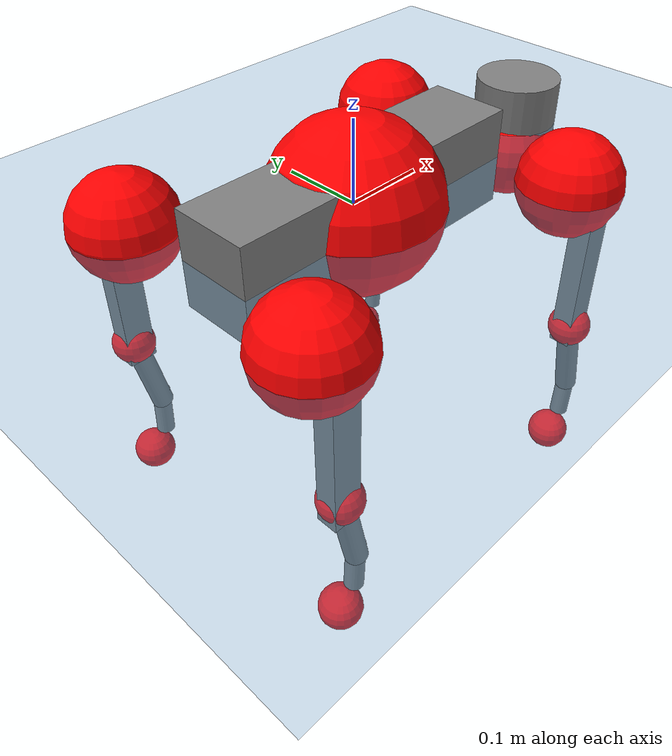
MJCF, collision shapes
<mujoco model="go2">
  <compiler angle="radian" assetdir="assets" balanceinertia="true" inertiafromgeom="false"/>

  <option timestep="0.005" density="1.2" viscosity="2e-05"/>

  <size nkey="1"/>

  <visual>
    <quality shadowsize="8192"/>
    <map shadowclip="0.5"/>
  </visual>

  <default>
    <default class="/">
      <geom contype="0" conaffinity="0" group="1" solref="-1000 -80"/>
      <site size="0.01 0.005 0.005" group="5"/>
      <general forcelimited="true" biastype="affine" gainprm="20" biasprm="0 -20 -0.5"/>
      <default class="go2">
        <joint armature="0.01" damping="0.01" frictionloss="0.2"/>
        <geom condim="1" margin="0.001"/>
        <default class="visual">
          <geom type="mesh" group="2"/>
        </default>
        <default class="collision">
          <geom group="3"/>
          <default class="foot">
            <geom size="0.022 0 0" condim="6" priority="1" friction="0.8 0.02 0.01" solimp="0.015 1 0.022"/>
          </default>
        </default>
        <default class="reward_collision_sphere">
          <geom group="5" rgba="1 0 0 1"/>
        </default>
      </default>
    </default>
  </default>

  <asset>
    <texture type="skybox" colorspace="auto" name="//unnamed_texture_0" builtin="gradient" rgb1="0.95 0.95 0.95" rgb2="0.95 0.95 0.95" width="100" height="600"/>
    <texture type="2d" colorspace="auto" name="texplane" builtin="checker" rgb1="0.345 0.575 0.748" rgb2="0.345 0.575 0.748" markrgb="1 1 1" width="512" height="512"/>
    <material name="MatPlane" class="/" texture="texplane" texuniform="true" texrepeat="2 2" specular="0.9"/>
    <material name="metal" class="/" rgba="0.9 0.95 0.95 1"/>
    <material name="black" class="/" rgba="0 0 0 1"/>
    <material name="white" class="/"/>
    <material name="gray" class="/" rgba="0.671705 0.692426 0.77427 1"/>
    <mesh name="base_0" class="/" file="base_0.obj"/>
    <mesh name="base_1" class="/" file="base_1.obj"/>
    <mesh name="base_2" class="/" file="base_2.obj"/>
    <mesh name="base_3" class="/" file="base_3.obj"/>
    <mesh name="base_4" class="/" file="base_4.obj"/>
    <mesh name="hip_0" class="/" file="hip_0.obj"/>
    <mesh name="hip_1" class="/" file="hip_1.obj"/>
    <mesh name="thigh_0" class="/" file="thigh_0.obj"/>
    <mesh name="thigh_1" class="/" file="thigh_1.obj"/>
    <mesh name="thigh_mirror_0" class="/" file="thigh_mirror_0.obj"/>
    <mesh name="thigh_mirror_1" class="/" file="thigh_mirror_1.obj"/>
    <mesh name="calf_0" class="/" file="calf_0.obj"/>
    <mesh name="calf_1" class="/" file="calf_1.obj"/>
    <mesh name="calf_mirror_0" class="/" file="calf_mirror_0.obj"/>
    <mesh name="calf_mirror_1" class="/" file="calf_mirror_1.obj"/>
    <mesh name="foot" class="/" file="foot.obj"/>
  </asset>

  <worldbody>
    <geom name="floor" class="/" size="100 100 0.125" type="plane" group="0" material="MatPlane"/>
    <light name="toplight_shadow" class="/" pos="0 0 5" dir="0.0990148 0.0990148 -0.990148" type="directional" ambient="0.04 0.04 0.04" diffuse="0.55 0.55 0.55" specular="0.12 0.12 0.12"/>
    <light name="toplight_fill" class="/" pos="0 0 5" dir="0.0990148 0.0990148 -0.990148" type="directional" castshadow="false" ambient="0.04 0.04 0.04" diffuse="0.3 0.3 0.3" specular="0.08 0.08 0.08"/>
    <body name="trunk" childclass="go2" pos="0.000244594 -0.000488302 0.000274279" quat="1 -5.4253e-05 4.27003e-05 -1.44759e-05">
      <inertial pos="0.0243135 -0.000119316 -0.00504537" quat="0.00317794 0.710236 -0.0168201 0.703755" mass="7.87977" diaginertia="0.126346 0.25977 0.0121472"/>
      <joint name="//unnamed_joint_0" type="free" armature="0" damping="0" frictionloss="0"/>
      <geom name="//unnamed_geom_1" class="visual" material="black" mesh="base_0"/>
      <geom name="//unnamed_geom_2" class="visual" material="black" mesh="base_1"/>
      <geom name="//unnamed_geom_3" class="visual" material="black" mesh="base_2"/>
      <geom name="//unnamed_geom_4" class="visual" material="white" mesh="base_3"/>
      <geom name="//unnamed_geom_5" class="visual" material="gray" mesh="base_4"/>
      <geom name="trunk_1" class="collision" size="0.196177 0.0487573 0.0594475" type="box"/>
      <geom name="trunk_2" class="collision" size="0.0521469 0.0469322" pos="0.296096 0 0.00869203" type="cylinder"/>
      <geom name="trunk_3" class="collision" size="0.0490181" pos="0.304407 0 -0.0521522"/>
      <geom name="//unnamed_geom_9" class="reward_collision_sphere" size="0.104294"/>
      <geom name="//unnamed_geom_10" class="reward_collision_sphere" size="0.0625763" pos="0.290901 0 -0.0391141"/>
      <site name="imu" pos="-0.0229781 0.0103655 0.0342872" size="0.0104294"/>
      <camera name="track" pos="0 -2.44135 0" quat="0.707107 0.707107 0 0" mode="trackcom"/>
      <camera name="ego_camera" pos="0.324147 0 0.0391141" quat="-0.5 -0.5 0.5 0.5"/>
      <body name="FL_hip" pos="0.202152 0.0537886 -0.00145933" quat="1 -4.20493e-05 1.53064e-06 1.85249e-05">
        <inertial pos="-0.0068163 0.00267083 0.00187529" quat="0.494921 0.498689 0.506636 0.499684" mass="0.772346" diaginertia="0.0010714 0.0016382 0.000235217"/>
        <joint name="FL_hip_joint" pos="0 0 0" axis="0.999996 -0.00263058 -0.000682674" range="-1.11148 1.09418" armature="0.010599" damping="0.00894327" frictionloss="0.223245"/>
        <geom name="//unnamed_geom_11" class="visual" material="metal" mesh="hip_0"/>
        <geom name="//unnamed_geom_12" class="visual" material="gray" mesh="hip_1"/>
        <geom name="//unnamed_geom_13" class="collision" size="0.0479751 0.0208588" pos="0 0.0976542 0" quat="0.707107 0.707107 0 0" type="cylinder"/>
        <geom name="//unnamed_geom_14" class="reward_collision_sphere" size="0.0625763" pos="0 0.0854474 0"/>
        <body name="FL_thigh" pos="-0.00160468 0.11373 -0.00130931" quat="1 0.000370421 0.000526511 -0.000138142">
          <inertial pos="-0.00274295 -0.0253274 -0.0267947" quat="0.829301 0.0869761 -0.018474 0.551682" mass="1.30829" diaginertia="0.00719211 0.0158141 0.000418993"/>
          <joint name="FL_thigh_joint" pos="0 0 0" axis="-0.00251514 0.999993 0.00259735" stiffness="0.00202768" range="-1.52095 3.45928" armature="0.0104564" damping="0.0165159" frictionloss="0.236651"/>
          <geom name="//unnamed_geom_15" class="visual" material="metal" mesh="thigh_0"/>
          <geom name="//unnamed_geom_16" class="visual" material="gray" mesh="thigh_1"/>
          <geom name="//unnamed_geom_17" class="collision" size="0.111073 0.012776 0.0177299" pos="0 0 -0.0925701" quat="0.707107 0 0.707107 0" type="box"/>
          <body name="FL_calf" pos="-0.00367136 0.00146738 -0.18767" quat="0.999999 0.000926747 -0.00030225 0.000632073">
            <inertial pos="0.00805824 -0.000813244 -0.120171" quat="0.710152 0.00105932 -0.004353 0.704035" mass="0.269478" diaginertia="0.00178144 0.00385914 2.69344e-05"/>
            <joint name="FL_calf_joint" pos="0 0 0" axis="-6.84566e-05 0.99999 0.00444239" stiffness="0.000335737" range="-2.67611 -0.852921" armature="0.00957901" damping="0.00963312" frictionloss="0.204115"/>
            <geom name="//unnamed_geom_18" class="visual" material="gray" mesh="calf_0"/>
            <geom name="//unnamed_geom_19" class="visual" material="black" mesh="calf_1"/>
            <geom name="FL_calf0" class="collision" size="0.0125153 0.0625763" pos="0.00831147 0 -0.0521522" quat="0.994493 0 -0.104807 0" type="cylinder"/>
            <geom name="//unnamed_geom_21" class="collision" size="0.0114723 0.0338955" pos="0.0207787 0 -0.128642" quat="0.999688 0 0.0249974 0" type="cylinder"/>
            <geom name="//unnamed_geom_22" class="visual" pos="0 0 -0.18514" quat="1 0 0 0" material="black" mesh="foot"/>
            <geom name="FL_foot" class="foot" size="0.0179452" pos="-0.00207787 0 -0.18514"/>
            <geom name="//unnamed_geom_24" class="reward_collision_sphere" size="0.0260734"/>
            <geom name="//unnamed_geom_25" class="reward_collision_sphere" size="0.0260734" pos="-0.00207787 0 -0.18514"/>
            <site name="FL_foot" class="foot" pos="-0.00207787 0 -0.18514" size="0.0104294"/>
          </body>
        </body>
      </body>
      <body name="FR_hip" pos="0.203755 -0.0590297 -0.00146471" quat="1 -0.000623796 -0.000115981 -0.000434139">
        <inertial pos="-0.00794624 -0.0006524 0.00213541" quat="0.49836 0.506005 0.49999 0.495587" mass="0.776929" diaginertia="0.00103712 0.00168313 0.00023933"/>
        <joint name="FR_hip_joint" pos="0 0 0" axis="0.999972 -0.0055727 0.00508754" range="-1.05055 1.05833" armature="0.0117296" damping="0.0164053" frictionloss="0.236824"/>
        <geom name="//unnamed_geom_26" class="visual" pos="0 3.0619e-09 1.31331e-07" quat="4.63268e-05 1 0 0" material="metal" mesh="hip_0"/>
        <geom name="//unnamed_geom_27" class="visual" pos="0 4.9637e-09 -3.24832e-07" quat="4.63268e-05 1 0 0" material="gray" mesh="hip_1"/>
        <geom name="//unnamed_geom_28" class="collision" size="0.0479751 0.0208588" pos="0 -0.0976542 0" quat="0.707107 0.707107 0 0" type="cylinder"/>
        <geom name="//unnamed_geom_29" class="reward_collision_sphere" size="0.0625763" pos="0 -0.0854474 0"/>
        <body name="FR_thigh" pos="-0.00179147 -0.119503 -0.0027844" quat="0.999999 0.000458475 1.64009e-05 0.00119032">
          <inertial pos="-0.00633227 0.0298715 -0.0280909" quat="0.552093 -0.0117 0.0806068 0.829794" mass="1.32291" diaginertia="0.00719896 0.0158059 0.000420827"/>
          <joint name="FR_thigh_joint" pos="0 0 0" axis="0.00329803 -0.999995 1.63151e-05" range="-3.45461 1.56827" armature="0.0107068" damping="0.0247613" frictionloss="0.209805"/>
          <geom name="//unnamed_geom_30" class="visual" material="metal" mesh="thigh_mirror_0"/>
          <geom name="//unnamed_geom_31" class="visual" material="gray" mesh="thigh_mirror_1"/>
          <geom name="//unnamed_geom_32" class="collision" size="0.111073 0.012776 0.0177299" pos="0 0 -0.0925701" quat="0.707107 0 0.707107 0" type="box"/>
          <body name="FR_calf" pos="0.00133863 -0.000515345 -0.186318" quat="1 9.2659e-05 -1.36628e-05 -0.000251437">
            <inertial pos="0.00930252 0.000883 -0.121764" quat="0.703075 -0.000128754 -0.00624705 0.711088" mass="0.273614" diaginertia="0.00184625 0.0039646 2.71439e-05"/>
            <joint name="FR_calf_joint" pos="0 0 0" axis="0.0119032 -0.999928 0.00115079" range="0.866032 2.70365" armature="0.00967367" damping="0" frictionloss="0.212719"/>
            <geom name="//unnamed_geom_33" class="visual" material="gray" mesh="calf_mirror_0"/>
            <geom name="//unnamed_geom_34" class="visual" material="black" mesh="calf_mirror_1"/>
            <geom name="FR_calf0" class="collision" size="0.0135582 0.0625763" pos="0.0103893 0 -0.0521522" quat="0.995004 0 -0.0998334 0" type="cylinder"/>
            <geom name="//unnamed_geom_36" class="collision" size="0.0114723 0.0338955" pos="0.0207787 0 -0.128642" quat="0.999688 0 0.0249974 0" type="cylinder"/>
            <geom name="//unnamed_geom_37" class="visual" pos="0 0 -0.18514" quat="1 0 0 0" material="black" mesh="foot"/>
            <geom name="FR_foot" class="foot" size="0.0205121" pos="-0.00207787 0 -0.18514"/>
            <geom name="//unnamed_geom_39" class="reward_collision_sphere" size="0.0260734"/>
            <geom name="//unnamed_geom_40" class="reward_collision_sphere" size="0.0260734" pos="-0.00207787 0 -0.18514"/>
            <site name="FR_foot" class="foot" pos="-0.00207787 0 -0.18514" size="0.0104294"/>
          </body>
        </body>
      </body>
      <body name="RL_hip" pos="-0.200576 0.0554961 0.0017084" quat="0.999999 0.000821021 0.000220207 -0.000807986">
        <inertial pos="0.00561305 0.00244272 0.00196639" quat="0.504305 0.495154 0.507587 0.492803" mass="0.820035" diaginertia="0.00110803 0.00166448 0.000247467"/>
        <joint name="RL_hip_joint" pos="0 0 0" axis="-0.999846 -0.0175343 0.000879523" range="-1.00327 0.992599" armature="0.0107039" damping="0.00585289" frictionloss="0.228554"/>
        <geom name="//unnamed_geom_41" class="visual" pos="-1.47862e-09 0 -2.89843e-07" quat="4.63268e-05 0 1 0" material="metal" mesh="hip_0"/>
        <geom name="//unnamed_geom_42" class="visual" pos="-2.39702e-09 0 -2.5705e-07" quat="4.63268e-05 0 1 0" material="gray" mesh="hip_1"/>
        <geom name="//unnamed_geom_43" class="collision" size="0.0479751 0.0208588" pos="0 0.0976542 0" quat="0.707107 0.707107 0 0" type="cylinder"/>
        <geom name="//unnamed_geom_44" class="reward_collision_sphere" size="0.0625763" pos="0 0.0854474 0"/>
        <body name="RL_thigh" pos="-0.00134597 0.116093 0.00218122" quat="0.999999 -0.000256163 -0.00061622 0.000830332">
          <inertial pos="-0.00349599 -0.0273963 -0.0267725" quat="0.825195 0.0910564 -0.0236736 0.556957" mass="1.30009" diaginertia="0.00721708 0.0169038 0.000449047"/>
          <joint name="RL_thigh_joint" pos="0 0 0" axis="-0.00693055 0.999819 0.0177383" range="-0.534065 4.57461" armature="0.00915878" damping="0.00707648" frictionloss="0.205609"/>
          <geom name="//unnamed_geom_45" class="visual" material="metal" mesh="thigh_0"/>
          <geom name="//unnamed_geom_46" class="visual" material="gray" mesh="thigh_1"/>
          <geom name="//unnamed_geom_47" class="collision" size="0.111073 0.012776 0.0177299" pos="0 0 -0.0925701" quat="0.707107 0 0.707107 0" type="box"/>
          <body name="RL_calf" pos="-0.00037945 0.00273827 -0.183615" quat="0.999999 -0.00035881 -0.000262478 -0.000932511">
            <inertial pos="0.00626048 -0.00114708 -0.124026" quat="0.711639 4.21234e-05 -0.00557612 0.702523" mass="0.286511" diaginertia="0.00183185 0.00408118 2.71358e-05"/>
            <joint name="RL_calf_joint" pos="0 0 0" axis="0.00375344 0.999991 0.00177205" range="-2.7726 -0.849646" armature="0.00989047" damping="0" frictionloss="0.218042"/>
            <geom name="//unnamed_geom_48" class="visual" material="gray" mesh="calf_0"/>
            <geom name="//unnamed_geom_49" class="visual" material="black" mesh="calf_1"/>
            <geom name="RL_calf0" class="collision" size="0.0135582 0.0625763" pos="0.0103893 0 -0.0521522" quat="0.995004 0 -0.0998334 0" type="cylinder"/>
            <geom name="//unnamed_geom_51" class="collision" size="0.0114723 0.0338955" pos="0.0207787 0 -0.128642" quat="0.999688 0 0.0249974 0" type="cylinder"/>
            <geom name="//unnamed_geom_52" class="visual" pos="0 0 -0.18514" quat="1 0 0 0" material="black" mesh="foot"/>
            <geom name="RL_foot" class="foot" size="0.0230031" pos="-0.00207787 0 -0.18514"/>
            <geom name="//unnamed_geom_54" class="reward_collision_sphere" size="0.0260734"/>
            <geom name="//unnamed_geom_55" class="reward_collision_sphere" size="0.0260734" pos="-0.00207787 0 -0.18514"/>
            <site name="RL_foot" class="foot" pos="-0.00207787 0 -0.18514" size="0.0104294"/>
          </body>
        </body>
      </body>
      <body name="RR_hip" pos="-0.199192 -0.0569681 -0.000357434" quat="1 -0.000261897 1.92995e-05 -8.041e-05">
        <inertial pos="0.00773437 -0.00260138 -0.00173438" quat="0.493246 0.494365 0.497048 0.51503" mass="0.782686" diaginertia="0.00110681 0.00171225 0.000239935"/>
        <joint name="RR_hip_joint" pos="0 0 0" axis="-0.999979 -0.00410691 0.00495587" stiffness="0.0114032" range="-1.06532 1.07287" armature="0.0104881" damping="0.00546827" frictionloss="0.214457"/>
        <geom name="//unnamed_geom_56" class="visual" pos="1.48491e-09 3.0619e-09 -4.21174e-07" quat="2.14617e-09 4.63268e-05 4.63268e-05 -1" material="metal" mesh="hip_0"/>
        <geom name="//unnamed_geom_57" class="visual" pos="2.38145e-09 4.9637e-09 6.77825e-08" quat="2.14617e-09 4.63268e-05 4.63268e-05 -1" material="gray" mesh="hip_1"/>
        <geom name="//unnamed_geom_58" class="collision" size="0.0479751 0.0208588" pos="0 -0.0976542 0" quat="0.707107 0.707107 0 0" type="cylinder"/>
        <geom name="//unnamed_geom_59" class="reward_collision_sphere" size="0.0625763" pos="0 -0.0854474 0"/>
        <body name="RR_thigh" pos="-0.000377321 -0.115816 0.000645157" quat="1 0.000260991 -2.57687e-06 0.00016191">
          <inertial pos="-0.00412101 0.0283916 -0.0266268" quat="0.558377 -0.0254702 0.0881733 0.824495" mass="1.26692" diaginertia="0.00704641 0.0152967 0.000426666"/>
          <joint name="RR_thigh_joint" pos="0 0 0" axis="-0.00765997 -0.999897 0.0121084" range="-4.51091 0.566934" armature="0.0106983" damping="0.00933858" frictionloss="0.226466"/>
          <geom name="//unnamed_geom_60" class="visual" material="metal" mesh="thigh_mirror_0"/>
          <geom name="//unnamed_geom_61" class="visual" material="gray" mesh="thigh_mirror_1"/>
          <geom name="//unnamed_geom_62" class="collision" size="0.111073 0.012776 0.0177299" pos="0 0 -0.0925701" quat="0.707107 0 0.707107 0" type="box"/>
          <body name="RR_calf" pos="0.00404116 0.00203994 -0.183106" quat="0.999999 0.000653652 0.000992789 -9.22462e-05">
            <inertial pos="0.00320751 0.000552416 -0.125413" quat="0.701221 -0.016199 0.00739802 0.712721" mass="0.271678" diaginertia="0.00175671 0.00379784 2.67298e-05"/>
            <joint name="RR_calf_joint" pos="0 0 0" axis="0.00943473 -0.999908 -0.00977969" range="0.835713 2.69436" armature="0.0110419" damping="0.00712412" frictionloss="0.200731"/>
            <geom name="//unnamed_geom_63" class="visual" material="gray" mesh="calf_mirror_0"/>
            <geom name="//unnamed_geom_64" class="visual" material="black" mesh="calf_mirror_1"/>
            <geom name="RR_calf0" class="collision" size="0.0135582 0.0625763" pos="0.0103893 0 -0.0521522" quat="0.995004 0 -0.0998334 0" type="cylinder"/>
            <geom name="//unnamed_geom_66" class="collision" size="0.0114723 0.0338955" pos="0.0207787 0 -0.128642" quat="0.999688 0 0.0249974 0" type="cylinder"/>
            <geom name="//unnamed_geom_67" class="visual" pos="0 0 -0.18514" quat="1 0 0 0" material="black" mesh="foot"/>
            <geom name="RR_foot" class="foot" size="0.0216291" pos="-0.00207787 0 -0.18514"/>
            <geom name="//unnamed_geom_69" class="reward_collision_sphere" size="0.0260734"/>
            <geom name="//unnamed_geom_70" class="reward_collision_sphere" size="0.0260734" pos="-0.00207787 0 -0.18514"/>
            <site name="RR_foot" class="foot" pos="-0.00207787 0 -0.18514" size="0.0104294"/>
          </body>
        </body>
      </body>
    </body>
  </worldbody>

  <contact>
    <pair class="/" geom1="floor" geom2="FL_foot" name="//unnamed_contact_0"/>
    <pair class="/" geom1="floor" geom2="FR_foot" name="//unnamed_contact_1"/>
    <pair class="/" geom1="floor" geom2="RL_foot" name="//unnamed_contact_2"/>
    <pair class="/" geom1="floor" geom2="RR_foot" name="//unnamed_contact_3"/>
  </contact>

  <actuator>
    <general name="FL_hip" class="/" joint="FL_hip_joint" forcerange="-21.9439 21.9439" gainprm="20.063" biasprm="0 -20.063 -0.558277"/>
    <general name="FL_thigh" class="/" joint="FL_thigh_joint" forcerange="-23.3485 23.3485" gainprm="20.063" biasprm="0 -20.063 -0.558277"/>
    <general name="FL_calf" class="/" joint="FL_calf_joint" forcerange="-42.5845 42.5845" gainprm="20.063" biasprm="0 -20.063 -0.558277"/>
    <general name="FR_hip" class="/" joint="FR_hip_joint" forcerange="-23.1743 23.1743" gainprm="20.063" biasprm="0 -20.063 -0.558277"/>
    <general name="FR_thigh" class="/" joint="FR_thigh_joint" forcerange="-23.1405 23.1405" gainprm="20.063" biasprm="0 -20.063 -0.558277"/>
    <general name="FR_calf" class="/" joint="FR_calf_joint" forcerange="-49.5495 49.5495" gainprm="20.063" biasprm="0 -20.063 -0.558277"/>
    <general name="RL_hip" class="/" joint="RL_hip_joint" forcerange="-22.6027 22.6027" gainprm="20.063" biasprm="0 -20.063 -0.558277"/>
    <general name="RL_thigh" class="/" joint="RL_thigh_joint" forcerange="-25.9395 25.9395" gainprm="20.063" biasprm="0 -20.063 -0.558277"/>
    <general name="RL_calf" class="/" joint="RL_calf_joint" forcerange="-43.7014 43.7014" gainprm="20.063" biasprm="0 -20.063 -0.558277"/>
    <general name="RR_hip" class="/" joint="RR_hip_joint" forcerange="-26.8647 26.8647" gainprm="20.063" biasprm="0 -20.063 -0.558277"/>
    <general name="RR_thigh" class="/" joint="RR_thigh_joint" forcerange="-23.7474 23.7474" gainprm="20.063" biasprm="0 -20.063 -0.558277"/>
    <general name="RR_calf" class="/" joint="RR_calf_joint" forcerange="-46.8618 46.8618" gainprm="20.063" biasprm="0 -20.063 -0.558277"/>
  </actuator>

  <sensor>
    <gyro site="imu" name="imu_angular_velocity"/>
    <velocimeter site="imu" name="imu_linear_velocity"/>
    <framelinvel objtype="site" objname="FL_foot" name="FL_foot_global_linear_velocity"/>
    <framelinvel objtype="site" objname="FR_foot" name="FR_foot_global_linear_velocity"/>
    <framelinvel objtype="site" objname="RL_foot" name="RL_foot_global_linear_velocity"/>
    <framelinvel objtype="site" objname="RR_foot" name="RR_foot_global_linear_velocity"/>
  </sensor>

  <keyframe>
    <key name="home" qpos="0 0 0.325 1 0 0 0 0.1 0.8 -1.5 -0.1 -0.8 1.5 -0.1 0.8 -1.5 0.1 -0.8 1.5"/>
  </keyframe>
</mujoco>
